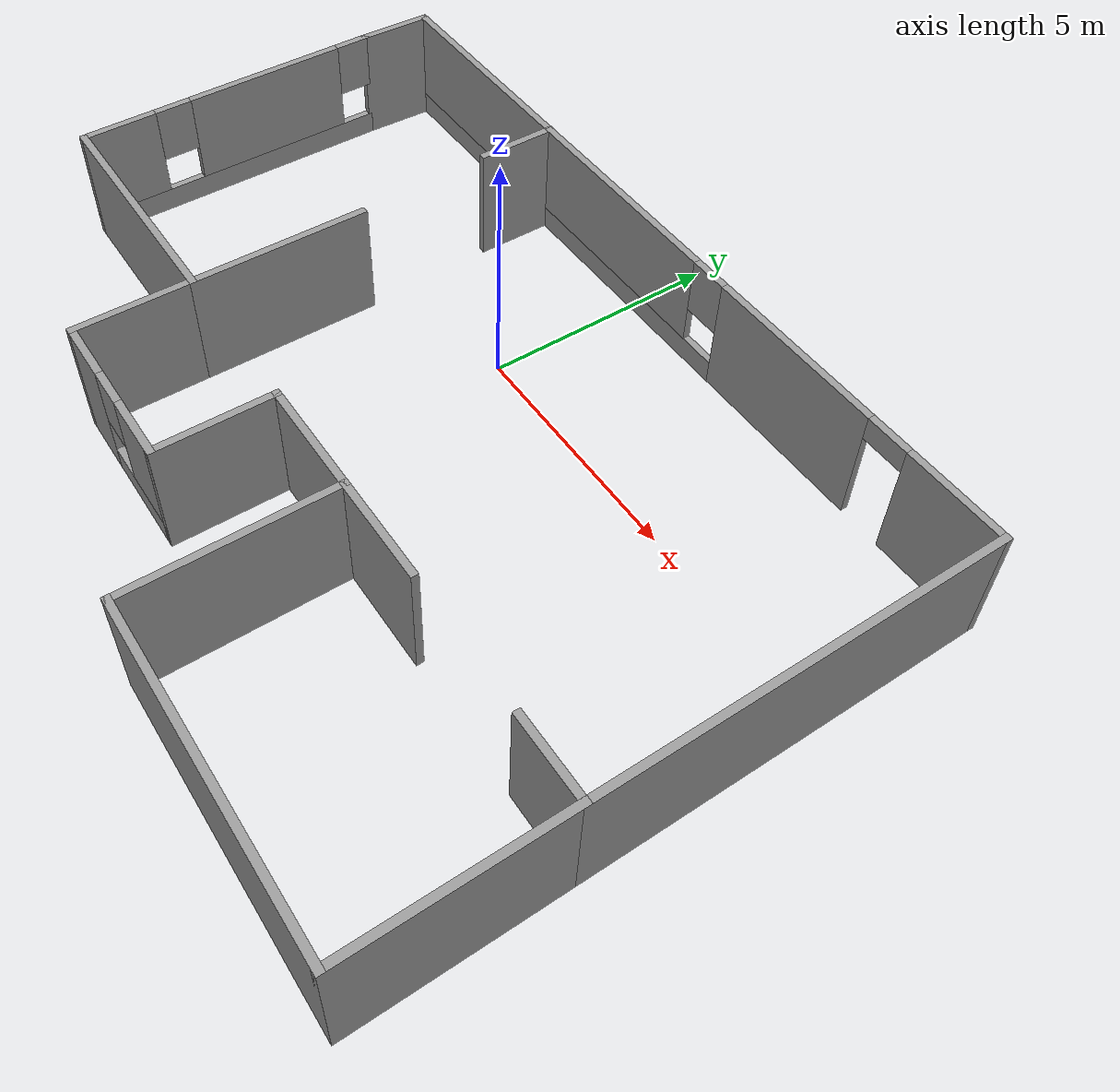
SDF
<?xml version='1.0'?>
<sdf version='1.7'>
  <model name='casa_model'>
    <pose>0.617939 -2.79268 0 0 -0 0</pose>
    <link name='Wall_1'>
      <pose>-8.69877 1.29612 0 0 -0 -1.5708</pose>
      <visual name='Wall_1_Visual_0'>
        <pose>-3.37367 0 1.25 0 -0 0</pose>
        <geometry>
          <box>
            <size>0.002662 0.15 2.5</size>
          </box>
        </geometry>
        <material>
          <script>
            <uri>file://media/materials/scripts/gazebo.material</uri>
            <name>Gazebo/Grey</name>
          </script>
          <ambient>1 1 1 1</ambient>
        </material>
        <meta>
          <layer>0</layer>
        </meta>
      </visual>
      <collision name='Wall_1_Collision_0'>
        <geometry>
          <box>
            <size>0.002662 0.15 2.5</size>
          </box>
        </geometry>
        <pose>-3.37367 0 1.25 0 -0 0</pose>
      </collision>
      <visual name='Wall_1_Visual_1'>
        <pose>0.001331 0 0.25 0 -0 0</pose>
        <geometry>
          <box>
            <size>6.74734 0.15 0.5</size>
          </box>
        </geometry>
        <material>
          <script>
            <uri>file://media/materials/scripts/gazebo.material</uri>
            <name>Gazebo/Grey</name>
          </script>
          <ambient>1 1 1 1</ambient>
        </material>
        <meta>
          <layer>0</layer>
        </meta>
      </visual>
      <collision name='Wall_1_Collision_1'>
        <geometry>
          <box>
            <size>6.74734 0.15 0.5</size>
          </box>
        </geometry>
        <pose>0.001331 0 0.25 0 -0 0</pose>
      </collision>
      <visual name='Wall_1_Visual_2'>
        <pose>-0.815727 0 1.5 0 -0 0</pose>
        <geometry>
          <box>
            <size>3.51322 0.15 2</size>
          </box>
        </geometry>
        <material>
          <script>
            <uri>file://media/materials/scripts/gazebo.material</uri>
            <name>Gazebo/Grey</name>
          </script>
          <ambient>1 1 1 1</ambient>
        </material>
        <meta>
          <layer>0</layer>
        </meta>
      </visual>
      <collision name='Wall_1_Collision_2'>
        <geometry>
          <box>
            <size>3.51322 0.15 2</size>
          </box>
        </geometry>
        <pose>-0.815727 0 1.5 0 -0 0</pose>
      </collision>
      <visual name='Wall_1_Visual_3'>
        <pose>2.55794 0 1.5 0 -0 0</pose>
        <geometry>
          <box>
            <size>1.63411 0.15 2</size>
          </box>
        </geometry>
        <material>
          <script>
            <uri>file://media/materials/scripts/gazebo.material</uri>
            <name>Gazebo/Grey</name>
          </script>
          <ambient>1 1 1 1</ambient>
        </material>
        <meta>
          <layer>0</layer>
        </meta>
      </visual>
      <collision name='Wall_1_Collision_3'>
        <geometry>
          <box>
            <size>1.63411 0.15 2</size>
          </box>
        </geometry>
        <pose>2.55794 0 1.5 0 -0 0</pose>
      </collision>
      <visual name='Wall_1_Visual_4'>
        <pose>-2.97234 0 1.9 0 -0 0</pose>
        <geometry>
          <box>
            <size>0.8 0.15 1.2</size>
          </box>
        </geometry>
        <material>
          <script>
            <uri>file://media/materials/scripts/gazebo.material</uri>
            <name>Gazebo/Grey</name>
          </script>
          <ambient>1 1 1 1</ambient>
        </material>
        <meta>
          <layer>0</layer>
        </meta>
      </visual>
      <collision name='Wall_1_Collision_4'>
        <geometry>
          <box>
            <size>0.8 0.15 1.2</size>
          </box>
        </geometry>
        <pose>-2.97234 0 1.9 0 -0 0</pose>
      </collision>
      <visual name='Wall_1_Visual_5'>
        <pose>1.34089 0 1.9 0 -0 0</pose>
        <geometry>
          <box>
            <size>0.8 0.15 1.2</size>
          </box>
        </geometry>
        <material>
          <script>
            <uri>file://media/materials/scripts/gazebo.material</uri>
            <name>Gazebo/Grey</name>
          </script>
          <ambient>1 1 1 1</ambient>
        </material>
        <meta>
          <layer>0</layer>
        </meta>
      </visual>
      <collision name='Wall_1_Collision_5'>
        <geometry>
          <box>
            <size>0.8 0.15 1.2</size>
          </box>
        </geometry>
        <pose>1.34089 0 1.9 0 -0 0</pose>
      </collision>
    </link>
    <link name='Wall_10'>
      <collision name='Wall_10_Collision'>
        <geometry>
          <box>
            <size>4.25 0.15 2.5</size>
          </box>
        </geometry>
        <pose>0 0 1.25 0 -0 0</pose>
      </collision>
      <visual name='Wall_10_Visual'>
        <pose>0 0 1.25 0 -0 0</pose>
        <geometry>
          <box>
            <size>4.25 0.15 2.5</size>
          </box>
        </geometry>
        <material>
          <script>
            <uri>file://media/materials/scripts/gazebo.material</uri>
            <name>Gazebo/Grey</name>
          </script>
          <ambient>1 1 1 1</ambient>
        </material>
        <meta>
          <layer>0</layer>
        </meta>
      </visual>
      <pose>8.70123 -4.05388 0 0 -0 1.5708</pose>
    </link>
    <link name='Wall_11'>
      <collision name='Wall_11_Collision'>
        <geometry>
          <box>
            <size>8.25 0.15 2.5</size>
          </box>
        </geometry>
        <pose>0 0 1.25 0 -0 0</pose>
      </collision>
      <visual name='Wall_11_Visual'>
        <pose>0 0 1.25 0 -0 0</pose>
        <geometry>
          <box>
            <size>8.25 0.15 2.5</size>
          </box>
        </geometry>
        <material>
          <script>
            <uri>file://media/materials/scripts/gazebo.material</uri>
            <name>Gazebo/Grey</name>
          </script>
          <ambient>1 1 1 1</ambient>
        </material>
        <meta>
          <layer>0</layer>
        </meta>
      </visual>
      <pose>8.70123 2.04612 0 0 -0 1.5708</pose>
    </link>
    <link name='Wall_12'>
      <pose>0.026228 6.09612 0 0 -0 3.14159</pose>
      <visual name='Wall_12_Visual_0'>
        <pose>-7.65966 0 1.25 0 -0 0</pose>
        <geometry>
          <box>
            <size>2.18069 0.15 2.5</size>
          </box>
        </geometry>
        <material>
          <script>
            <uri>file://media/materials/scripts/gazebo.material</uri>
            <name>Gazebo/Grey</name>
          </script>
          <ambient>1 1 1 1</ambient>
        </material>
        <meta>
          <layer>0</layer>
        </meta>
      </visual>
      <collision name='Wall_12_Collision_0'>
        <geometry>
          <box>
            <size>2.18069 0.15 2.5</size>
          </box>
        </geometry>
        <pose>-7.65966 0 1.25 0 -0 0</pose>
      </collision>
      <visual name='Wall_12_Visual_1'>
        <pose>-3.75416 0 1.25 0 -0 0</pose>
        <geometry>
          <box>
            <size>3.83031 0.15 2.5</size>
          </box>
        </geometry>
        <material>
          <script>
            <uri>file://media/materials/scripts/gazebo.material</uri>
            <name>Gazebo/Grey</name>
          </script>
          <ambient>1 1 1 1</ambient>
        </material>
        <meta>
          <layer>0</layer>
        </meta>
      </visual>
      <collision name='Wall_12_Collision_1'>
        <geometry>
          <box>
            <size>3.83031 0.15 2.5</size>
          </box>
        </geometry>
        <pose>-3.75416 0 1.25 0 -0 0</pose>
      </collision>
      <visual name='Wall_12_Visual_2'>
        <pose>3.4555 0 0.25 0 -0 0</pose>
        <geometry>
          <box>
            <size>10.589 0.15 0.5</size>
          </box>
        </geometry>
        <material>
          <script>
            <uri>file://media/materials/scripts/gazebo.material</uri>
            <name>Gazebo/Grey</name>
          </script>
          <ambient>1 1 1 1</ambient>
        </material>
        <meta>
          <layer>0</layer>
        </meta>
      </visual>
      <collision name='Wall_12_Collision_2'>
        <geometry>
          <box>
            <size>10.589 0.15 0.5</size>
          </box>
        </geometry>
        <pose>3.4555 0 0.25 0 -0 0</pose>
      </collision>
      <visual name='Wall_12_Visual_3'>
        <pose>3.8555 0 1.5 0 -0 0</pose>
        <geometry>
          <box>
            <size>9.78901 0.15 2</size>
          </box>
        </geometry>
        <material>
          <script>
            <uri>file://media/materials/scripts/gazebo.material</uri>
            <name>Gazebo/Grey</name>
          </script>
          <ambient>1 1 1 1</ambient>
        </material>
        <meta>
          <layer>0</layer>
        </meta>
      </visual>
      <collision name='Wall_12_Collision_3'>
        <geometry>
          <box>
            <size>9.78901 0.15 2</size>
          </box>
        </geometry>
        <pose>3.8555 0 1.5 0 -0 0</pose>
      </collision>
      <visual name='Wall_12_Visual_4'>
        <pose>-1.43901 0 1.9 0 -0 0</pose>
        <geometry>
          <box>
            <size>0.8 0.15 1.2</size>
          </box>
        </geometry>
        <material>
          <script>
            <uri>file://media/materials/scripts/gazebo.material</uri>
            <name>Gazebo/Grey</name>
          </script>
          <ambient>1 1 1 1</ambient>
        </material>
        <meta>
          <layer>0</layer>
        </meta>
      </visual>
      <collision name='Wall_12_Collision_4'>
        <geometry>
          <box>
            <size>0.8 0.15 1.2</size>
          </box>
        </geometry>
        <pose>-1.43901 0 1.9 0 -0 0</pose>
      </collision>
      <visual name='Wall_12_Visual_5'>
        <pose>-6.11931 0 2.25 0 -0 0</pose>
        <geometry>
          <box>
            <size>0.9 0.15 0.5</size>
          </box>
        </geometry>
        <material>
          <script>
            <uri>file://media/materials/scripts/gazebo.material</uri>
            <name>Gazebo/Grey</name>
          </script>
          <ambient>1 1 1 1</ambient>
        </material>
        <meta>
          <layer>0</layer>
        </meta>
      </visual>
      <collision name='Wall_12_Collision_5'>
        <geometry>
          <box>
            <size>0.9 0.15 0.5</size>
          </box>
        </geometry>
        <pose>-6.11931 0 2.25 0 -0 0</pose>
      </collision>
    </link>
    <link name='Wall_13'>
      <collision name='Wall_13_Collision'>
        <geometry>
          <box>
            <size>1.65083 0.15 2.5</size>
          </box>
        </geometry>
        <pose>0 0 1.25 0 -0 0</pose>
      </collision>
      <visual name='Wall_13_Visual'>
        <pose>0 0 1.25 0 -0 0</pose>
        <geometry>
          <box>
            <size>1.65083 0.15 2.5</size>
          </box>
        </geometry>
        <material>
          <script>
            <uri>file://media/materials/scripts/gazebo.material</uri>
            <name>Gazebo/Grey</name>
          </script>
          <ambient>1 1 1 1</ambient>
        </material>
        <meta>
          <layer>0</layer>
        </meta>
      </visual>
      <pose>-8.67377 5.34612 0 0 -0 -1.60412</pose>
    </link>
    <link name='Wall_15'>
      <collision name='Wall_15_Collision'>
        <geometry>
          <box>
            <size>3.75 0.15 2.5</size>
          </box>
        </geometry>
        <pose>0 0 1.25 0 -0 0</pose>
      </collision>
      <visual name='Wall_15_Visual'>
        <pose>0 0 1.25 0 -0 0</pose>
        <geometry>
          <box>
            <size>3.75 0.15 2.5</size>
          </box>
        </geometry>
        <material>
          <script>
            <uri>file://media/materials/scripts/gazebo.material</uri>
            <name>Gazebo/Grey</name>
          </script>
          <ambient>1 1 1 1</ambient>
        </material>
        <meta>
          <layer>0</layer>
        </meta>
      </visual>
      <pose>-3.59877 -0.203876 0 0 -0 1.5708</pose>
    </link>
    <link name='Wall_17'>
      <collision name='Wall_17_Collision'>
        <geometry>
          <box>
            <size>1.75 0.15 2.5</size>
          </box>
        </geometry>
        <pose>0 0 1.25 0 -0 0</pose>
      </collision>
      <visual name='Wall_17_Visual'>
        <pose>0 0 1.25 0 -0 0</pose>
        <geometry>
          <box>
            <size>1.75 0.15 2.5</size>
          </box>
        </geometry>
        <material>
          <script>
            <uri>file://media/materials/scripts/gazebo.material</uri>
            <name>Gazebo/Grey</name>
          </script>
          <ambient>1 1 1 1</ambient>
        </material>
        <meta>
          <layer>0</layer>
        </meta>
      </visual>
      <pose>-3.7351 5.30388 0 0 -0 -1.5708</pose>
    </link>
    <link name='Wall_19'>
      <collision name='Wall_19_Collision'>
        <geometry>
          <box>
            <size>2.25 0.15 2.5</size>
          </box>
        </geometry>
        <pose>0 0 1.25 0 -0 0</pose>
      </collision>
      <visual name='Wall_19_Visual'>
        <pose>0 0 1.25 0 -0 0</pose>
        <geometry>
          <box>
            <size>2.25 0.15 2.5</size>
          </box>
        </geometry>
        <material>
          <script>
            <uri>file://media/materials/scripts/gazebo.material</uri>
            <name>Gazebo/Grey</name>
          </script>
          <ambient>1 1 1 1</ambient>
        </material>
        <meta>
          <layer>0</layer>
        </meta>
      </visual>
      <pose>3.15123 -2.00387 0 0 -0 0</pose>
    </link>
    <link name='Wall_2'>
      <collision name='Wall_2_Collision'>
        <geometry>
          <box>
            <size>5.25 0.15 2.5</size>
          </box>
        </geometry>
        <pose>0 0 1.25 0 -0 0</pose>
      </collision>
      <visual name='Wall_2_Visual'>
        <pose>0 0 1.25 0 -0 0</pose>
        <geometry>
          <box>
            <size>5.25 0.15 2.5</size>
          </box>
        </geometry>
        <material>
          <script>
            <uri>file://media/materials/scripts/gazebo.material</uri>
            <name>Gazebo/Grey</name>
          </script>
          <ambient>1 1 1 1</ambient>
        </material>
        <meta>
          <layer>0</layer>
        </meta>
      </visual>
      <pose>-6.14877 -2.00387 0 0 -0 0</pose>
    </link>
    <link name='Wall_21'>
      <collision name='Wall_21_Collision'>
        <geometry>
          <box>
            <size>1.75 0.15 2.5</size>
          </box>
        </geometry>
        <pose>0 0 1.25 0 -0 0</pose>
      </collision>
      <visual name='Wall_21_Visual'>
        <pose>0 0 1.25 0 -0 0</pose>
        <geometry>
          <box>
            <size>1.75 0.15 2.5</size>
          </box>
        </geometry>
        <material>
          <script>
            <uri>file://media/materials/scripts/gazebo.material</uri>
            <name>Gazebo/Grey</name>
          </script>
          <ambient>1 1 1 1</ambient>
        </material>
        <meta>
          <layer>0</layer>
        </meta>
      </visual>
      <pose>7.90123 -2.00387 0 0 -0 3.14159</pose>
    </link>
    <link name='Wall_3'>
      <collision name='Wall_3_Collision'>
        <geometry>
          <box>
            <size>2.5 0.15 2.5</size>
          </box>
        </geometry>
        <pose>0 0 1.25 0 -0 0</pose>
      </collision>
      <visual name='Wall_3_Visual'>
        <pose>0 0 1.25 0 -0 0</pose>
        <geometry>
          <box>
            <size>2.5 0.15 2.5</size>
          </box>
        </geometry>
        <material>
          <script>
            <uri>file://media/materials/scripts/gazebo.material</uri>
            <name>Gazebo/Grey</name>
          </script>
          <ambient>1 1 1 1</ambient>
        </material>
        <meta>
          <layer>0</layer>
        </meta>
      </visual>
      <pose>-3.59877 -3.17888 0 0 -0 -1.5708</pose>
    </link>
    <link name='Wall_4'>
      <pose>-1.92377 -4.35388 0 0 -0 0</pose>
      <visual name='Wall_4_Visual_0'>
        <pose>-1.09355 0 1.25 0 -0 0</pose>
        <geometry>
          <box>
            <size>1.3129 0.15 2.5</size>
          </box>
        </geometry>
        <material>
          <script>
            <uri>file://media/materials/scripts/gazebo.material</uri>
            <name>Gazebo/Grey</name>
          </script>
          <ambient>1 1 1 1</ambient>
        </material>
        <meta>
          <layer>0</layer>
        </meta>
      </visual>
      <collision name='Wall_4_Collision_0'>
        <geometry>
          <box>
            <size>1.3129 0.15 2.5</size>
          </box>
        </geometry>
        <pose>-1.09355 0 1.25 0 -0 0</pose>
      </collision>
      <visual name='Wall_4_Visual_1'>
        <pose>0.656451 0 0.25 0 -0 0</pose>
        <geometry>
          <box>
            <size>2.1871 0.15 0.5</size>
          </box>
        </geometry>
        <material>
          <script>
            <uri>file://media/materials/scripts/gazebo.material</uri>
            <name>Gazebo/Grey</name>
          </script>
          <ambient>1 1 1 1</ambient>
        </material>
        <meta>
          <layer>0</layer>
        </meta>
      </visual>
      <collision name='Wall_4_Collision_1'>
        <geometry>
          <box>
            <size>2.1871 0.15 0.5</size>
          </box>
        </geometry>
        <pose>0.656451 0 0.25 0 -0 0</pose>
      </collision>
      <visual name='Wall_4_Visual_2'>
        <pose>1.05645 0 1.5 0 -0 0</pose>
        <geometry>
          <box>
            <size>1.3871 0.15 2</size>
          </box>
        </geometry>
        <material>
          <script>
            <uri>file://media/materials/scripts/gazebo.material</uri>
            <name>Gazebo/Grey</name>
          </script>
          <ambient>1 1 1 1</ambient>
        </material>
        <meta>
          <layer>0</layer>
        </meta>
      </visual>
      <collision name='Wall_4_Collision_2'>
        <geometry>
          <box>
            <size>1.3871 0.15 2</size>
          </box>
        </geometry>
        <pose>1.05645 0 1.5 0 -0 0</pose>
      </collision>
      <visual name='Wall_4_Visual_3'>
        <pose>-0.037097 0 1.9 0 -0 0</pose>
        <geometry>
          <box>
            <size>0.8 0.15 1.2</size>
          </box>
        </geometry>
        <material>
          <script>
            <uri>file://media/materials/scripts/gazebo.material</uri>
            <name>Gazebo/Grey</name>
          </script>
          <ambient>1 1 1 1</ambient>
        </material>
        <meta>
          <layer>0</layer>
        </meta>
      </visual>
      <collision name='Wall_4_Collision_3'>
        <geometry>
          <box>
            <size>0.8 0.15 1.2</size>
          </box>
        </geometry>
        <pose>-0.037097 0 1.9 0 -0 0</pose>
      </collision>
    </link>
    <link name='Wall_5'>
      <collision name='Wall_5_Collision'>
        <geometry>
          <box>
            <size>2.5 0.15 2.5</size>
          </box>
        </geometry>
        <pose>0 0 1.25 0 -0 0</pose>
      </collision>
      <visual name='Wall_5_Visual'>
        <pose>0 0 1.25 0 -0 0</pose>
        <geometry>
          <box>
            <size>2.5 0.15 2.5</size>
          </box>
        </geometry>
        <material>
          <script>
            <uri>file://media/materials/scripts/gazebo.material</uri>
            <name>Gazebo/Grey</name>
          </script>
          <ambient>1 1 1 1</ambient>
        </material>
        <meta>
          <layer>0</layer>
        </meta>
      </visual>
      <pose>-0.248772 -3.17888 0 0 -0 1.5708</pose>
    </link>
    <link name='Wall_6'>
      <collision name='Wall_6_Collision'>
        <geometry>
          <box>
            <size>2.5 0.15 2.5</size>
          </box>
        </geometry>
        <pose>0 0 1.25 0 -0 0</pose>
      </collision>
      <visual name='Wall_6_Visual'>
        <pose>0 0 1.25 0 -0 0</pose>
        <geometry>
          <box>
            <size>2.5 0.15 2.5</size>
          </box>
        </geometry>
        <material>
          <script>
            <uri>file://media/materials/scripts/gazebo.material</uri>
            <name>Gazebo/Grey</name>
          </script>
          <ambient>1 1 1 1</ambient>
        </material>
        <meta>
          <layer>0</layer>
        </meta>
      </visual>
      <pose>0.926228 -2.00387 0 0 -0 0</pose>
    </link>
    <link name='Wall_8'>
      <collision name='Wall_8_Collision'>
        <geometry>
          <box>
            <size>4.25 0.15 2.5</size>
          </box>
        </geometry>
        <pose>0 0 1.25 0 -0 0</pose>
      </collision>
      <visual name='Wall_8_Visual'>
        <pose>0 0 1.25 0 -0 0</pose>
        <geometry>
          <box>
            <size>4.25 0.15 2.5</size>
          </box>
        </geometry>
        <material>
          <script>
            <uri>file://media/materials/scripts/gazebo.material</uri>
            <name>Gazebo/Grey</name>
          </script>
          <ambient>1 1 1 1</ambient>
        </material>
        <meta>
          <layer>0</layer>
        </meta>
      </visual>
      <pose>2.10123 -4.05388 0 0 -0 -1.5708</pose>
    </link>
    <link name='Wall_9'>
      <collision name='Wall_9_Collision'>
        <geometry>
          <box>
            <size>6.75 0.15 2.5</size>
          </box>
        </geometry>
        <pose>0 0 1.25 0 -0 0</pose>
      </collision>
      <visual name='Wall_9_Visual'>
        <pose>0 0 1.25 0 -0 0</pose>
        <geometry>
          <box>
            <size>6.75 0.15 2.5</size>
          </box>
        </geometry>
        <material>
          <script>
            <uri>file://media/materials/scripts/gazebo.material</uri>
            <name>Gazebo/Grey</name>
          </script>
          <ambient>1 1 1 1</ambient>
        </material>
        <meta>
          <layer>0</layer>
        </meta>
      </visual>
      <pose>5.40123 -6.10388 0 0 -0 0</pose>
    </link>
    <static>1</static>
  </model>
</sdf>
